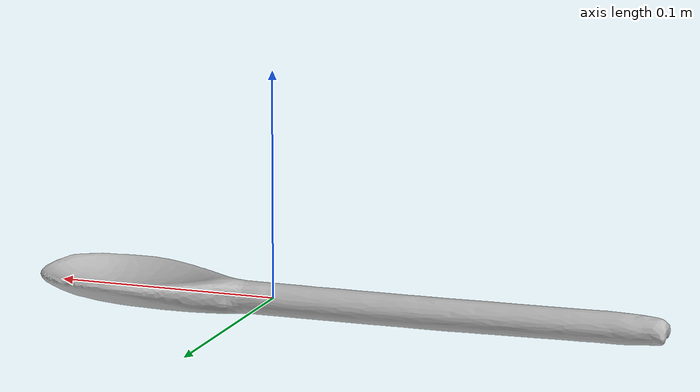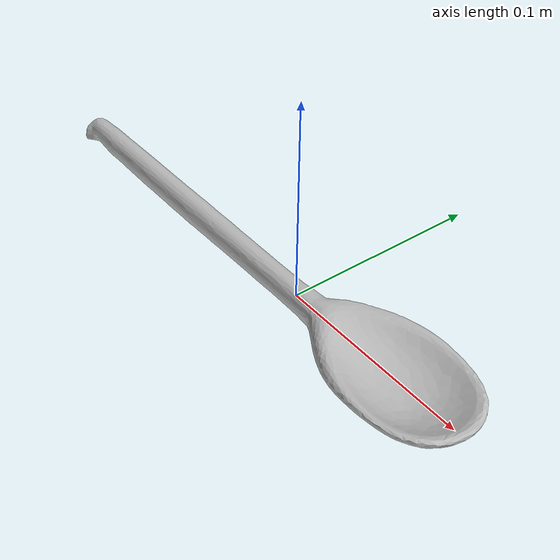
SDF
<?xml version='1.0'?>
<sdf version='1.6'>
	<model name='a_woodenspoon1'>
		<static>false</static>
		<pose>0 0 0 0 0 0</pose>

		<link name='link'>
			<inertial>
			<mass>0.06</mass>
			<pose>-0.001351 0.00053629 -0.00033412 0 0 0</pose>
				<inertia>
					<ixx>1.1283e-06</ixx>
					<ixy>0</ixy>
					<ixz>0</ixz>
					<iyy>1.0655e-06</iyy>
					<iyz>0</iyz>
					<izz>1.6291e-07</izz>
				</inertia>
			</inertial>
			<sensor name="tool_contact_sensor" type="contact">
				<always_on>true</always_on>
				<update_rate>30.0</update_rate>
				<contact>
					<collision>collision</collision>
				</contact>
				<plugin name="tool_bumper" filename="libgazebo_ros_bumper.so">
					<bumperTopicName>tool_contact_sensor_state</bumperTopicName>
					<frameName>world</frameName>
				</plugin>
			</sensor>
			<collision name='collision'>
				<geometry>
					<mesh>
						<uri>model://a_woodenspoon1/a_woodenspoon1.dae</uri>
					</mesh>
				</geometry>
				<surface>
					<friction>
						<ode>
							<mu>0.2</mu>
							<mu2>0.2</mu2>
						</ode>
					</friction>
				</surface>
			</collision>
			<visual name='visual'>
				<geometry>
					<mesh>
						<uri>model://a_woodenspoon1/a_woodenspoon1.dae</uri>
					</mesh>
				</geometry>
			</visual>
		</link>
	</model>
</sdf>
